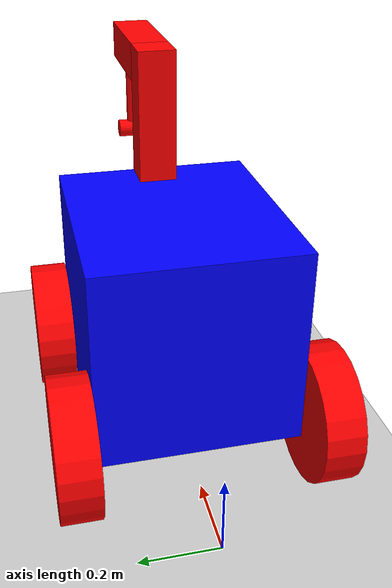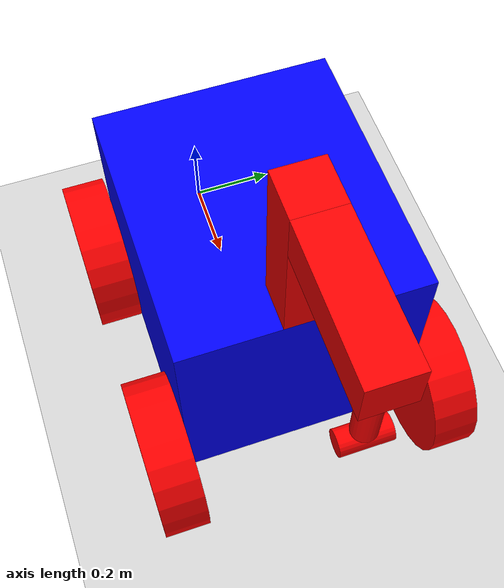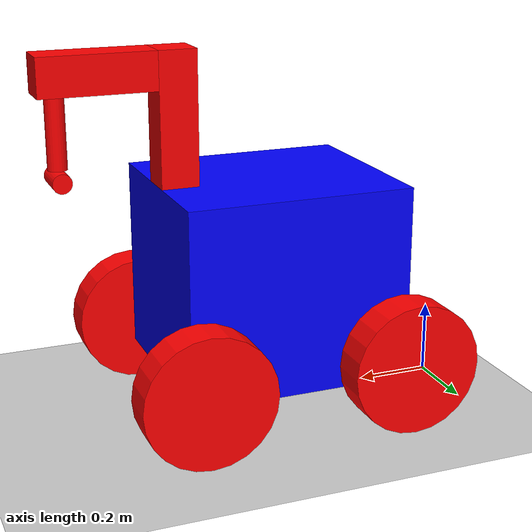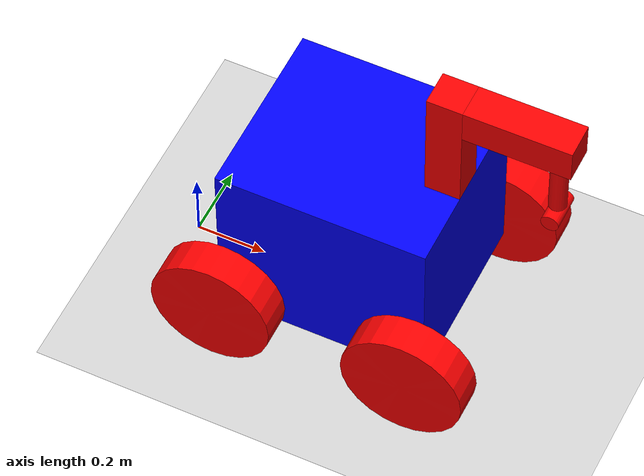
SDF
<?xml version="1.0" ?>
<sdf version="1.10">
    <world name="car_world">
        <physics name="1ms" type="ignored">
            <max_step_size>0.001</max_step_size>
            <real_time_factor>1.0</real_time_factor>
        </physics>
        <plugin
            filename="gz-sim-physics-system"
            name="gz::sim::systems::Physics">
        </plugin>
        <plugin
            filename="gz-sim-user-commands-system"
            name="gz::sim::systems::UserCommands">
        </plugin>
        <plugin
            filename="gz-sim-scene-broadcaster-system"
            name="gz::sim::systems::SceneBroadcaster">
        </plugin>

        <light type="directional" name="sun">
            <cast_shadows>true</cast_shadows>
            <pose>0 0 10 0 0 0</pose>
            <diffuse>0.8 0.8 0.8 1</diffuse>
            <specular>0.2 0.2 0.2 1</specular>
            <attenuation>
                <range>1000</range>
                <constant>0.9</constant>
                <linear>0.01</linear>
                <quadratic>0.001</quadratic>
            </attenuation>
            <direction>-0.5 0.1 -0.9</direction>
        </light>

        <model name="ground_plane">
            <static>true</static>
            <link name="link">
                <collision name="collision">
                <geometry>
                    <plane>
                    <normal>0 0 1</normal>
                    </plane>
                </geometry>
                </collision>
                <visual name="visual">
                <geometry>
                    <plane>
                    <normal>0 0 1</normal>
                    <size>100 100</size>
                    </plane>
                </geometry>
                <material>
                    <ambient>0.8 0.8 0.8 1</ambient>
                    <diffuse>0.8 0.8 0.8 1</diffuse>
                    <specular>0.8 0.8 0.8 1</specular>
                </material>
                </visual>
            </link>
        </model>
        <model name='vehicle_blue' canonical_link='chassis'>
        	<plugin
       			filename="libignition-gazebo-diff-drive-system.so"
       			name="ignition::gazebo::systems::DiffDrive">
       			<left_joint>left_wheel_joint</left_joint>
       			<right_joint>right_wheel_joint</right_joint>
       			<wheel_separation>1.2</wheel_separation>
       			<wheel_radius>0.4</wheel_radius>
       			<odom_publish_frequency>1</odom_publish_frequency>
       			<topic>cmd_vel</topic>
    			</plugin>
                <frame name="lidar_frame" attached_to='chassis'>
                    <pose>0.8 0 0.5 0 0 0</pose>
                </frame>
            <pose relative_to='lidar_frame'>0 0 0 0 0 0</pose>
<sensor name='gpu_lidar' type='gpu_lidar'>"
            <topic>lidar</topic>
            <update_rate>10</update_rate>
            <ray>
                <scan>
                    <horizontal>
                        <samples>360</samples>
                        <resolution>1</resolution>
                        <min_angle>-1.396263</min_angle>
                        <max_angle>1.396263</max_angle>
                    </horizontal>
                    <vertical>
                        <samples>1</samples>
                        <resolution>0.01</resolution>
                        <min_angle>0</min_angle>
                        <max_angle>0</max_angle>
                    </vertical>
                </scan>
                <range>
                    <min>0.08</min>
                    <max>10.0</max>
                    <resolution>0.01</resolution>
                </range>
            </ray>
            <always_on>1</always_on>
            <visualize>true</visualize>
        </sensor>
        <sensor name="camera1" type="camera">
        <update_rate>10</update_rate>
        <pose relative_to='lidar_frame'>0 0 0 0 0 0</pose>
        <topic>/images_l16</topic>
        <camera>
          <horizontal_fov>1.05</horizontal_fov>
          <image>
            <width>256</width>
            <height>256</height>
            <format>L_INT16</format>
          </image>
          <clip>
            <near>0.1</near>
            <far>10.0</far>
          </clip>

        </camera>
      </sensor>
    		<pose relative_to='world'>0 0 0 0 0 0</pose>
    		<link name='chassis'>
        		<pose relative_to='__model__'>0.5 0 0.375 0 0 0</pose>
        	<inertial> <!--inertial properties of the link mass, inertia matix-->
        		<mass>4</mass>
        		<inertia>
            			<ixx>0.12</ixx>
            			<ixy>0</ixy>
            			<ixz>0</ixz>
            			<iyy>0.090133</iyy>
            			<iyz>0</iyz>
            			<izz>0.210133</izz>
        		</inertia>
    		</inertial>
    		<visual name='visual'>
        		<geometry>
            			<box>
                			<size>0.6 0.52 0.52</size>
            			</box>
        		</geometry>
        		<!--let's add color to our link-->
        		<material>
            			<ambient>0.0 0.0 1.0 1</ambient>
            			<diffuse>0.0 0.0 1.0 1</diffuse>
            			<specular>0.0 0.0 1.0 1</specular>
        		</material>
    		</visual>
    		<collision name='collision'>
            <geometry>
                <box>
                    <size>0.6 0.52 0.52</size>
                </box>
            </geometry>
        </collision>
    </link>
    <link name = 'gripper'>
    	<pose relative_to = 'chassis'> 0.25 0 0.26 0 0 0</pose>
    </link>

<link name = 'body_a'>
    <pose relative_to ="gripper">0 0 0.175 -1.5707 0 0</pose>
    <inertial>
    	<mass>2</mass>
    	<inertia>
    		<ixx>0.001667</ixx>
            	<ixy>0</ixy>
            	<ixz>0</ixz>
            	<iyy>0.020417</iyy>
            	<iyz>0</iyz>
            	<izz>0.022083</izz>
    	</inertia>
    </inertial>
    <visual name='visual'>
    <geometry>
        <box>
              <size>0.1 0.35 0.1</size>
        </box>
        </geometry>
        <material>
            <ambient>1.0 0.0 0.0 1</ambient>
            <diffuse>1.0 0.0 0.0 1</diffuse>
            <specular>1.0 0.0 0.0 1</specular>
        </material>
    </visual>
    <collision name='collision'>
        <geometry>
            <box>
              <size>0.1 0.35 0.1</size>
            </box>
        </geometry>
    </collision>
</link>

<link name = 'body_b'>
    <pose relative_to ="gripper">0.20 0 0.3 -1.5707 0 0</pose>
    <inertial>
    	<mass>2</mass>
    	<inertia>
    		<ixx>0.001667</ixx>
            	<ixy>0</ixy>
            	<ixz>0</ixz>
            	<iyy>0.020417</iyy>
            	<iyz>0</iyz>
            	<izz>0.022083</izz>
    	</inertia>
    </inertial>
    <visual name='visual'>
    <geometry>
        <box>
              <size>0.3 0.1 0.1</size>
        </box>
        </geometry>
        <material>
            <ambient>1.0 0.0 0.0 1</ambient>
            <diffuse>1.0 0.0 0.0 1</diffuse>
            <specular>1.0 0.0 0.0 1</specular>
        </material>
    </visual>
    <collision name='collision'>
        <geometry>
            <box>
              <size>0.3 0.1 0.1</size>
            </box>
        </geometry>
    </collision>
</link>

<link name = 'body_c'>
    <pose relative_to ="gripper">0.30 0 0.1575 0 0 0</pose>
    <inertial>
    	<mass>2</mass>
    	<inertia>
    		<ixx>0.001667</ixx>
            	<ixy>0</ixy>
            	<ixz>0</ixz>
            	<iyy>0.020417</iyy>
            	<iyz>0</iyz>
            	<izz>0.022083</izz>
    	</inertia>
    </inertial>
    <visual name='visual'>
    <geometry>
        <cylinder>
              <radius>0.025</radius>
                <length>0.185</length>
        </cylinder>
        </geometry>
        <material>
            <ambient>1.0 0.0 0.0 1</ambient>
            <diffuse>1.0 0.0 0.0 1</diffuse>
            <specular>1.0 0.0 0.0 1</specular>
        </material>
    </visual>
    <collision name='collision'>
        <geometry>
            <cylinder>
                <radius>0.025</radius>
                <length>0.185</length>
        </cylinder>
        </geometry>
    </collision>
</link>

<link name = 'body_d'>
    <pose relative_to ="gripper">0.30 0 0.04 -1.5707 0 0</pose>
    <inertial>
    	<mass>2</mass>
    	<inertia>
    		<ixx>0.001667</ixx>
            	<ixy>0</ixy>
            	<ixz>0</ixz>
            	<iyy>0.020417</iyy>
            	<iyz>0</iyz>
            	<izz>0.022083</izz>
    	</inertia>
    </inertial>
    <visual name='visual'>
    <geometry>
        <cylinder>
              <radius>0.025</radius>
              <length>0.1</length>
        </cylinder>
        </geometry>
        <material>
            <ambient>1.0 0.0 0.0 1</ambient>
            <diffuse>1.0 0.0 0.0 1</diffuse>
            <specular>1.0 0.0 0.0 1</specular>
        </material>
    </visual>
    <collision name='collision'>
        <geometry>
            <cylinder>
                <radius>0.025</radius>
                <length>0.1</length>
        </cylinder>
        </geometry>z
    </collision>
</link>

<link name = 'body_e'>
    <pose relative_to ="gripper">0.30 0 0.1575 0 0 0</pose>
    <inertial>
    	<mass>2</mass>
    	<inertia>
    		<ixx>0.001667</ixx>
            	<ixy>0</ixy>
            	<ixz>0</ixz>
            	<iyy>0.020417</iyy>
            	<iyz>0</iyz>
            	<izz>0.022083</izz>
    	</inertia>
    </inertial>
    <visual name='visual'>
    <geometry>
        <cylinder>
              <radius>0.0125</radius>
              <length>0.1</length>
        </cylinder>
        </geometry>
        <material>
            <ambient>1.0 0.0 0.0 1</ambient>
            <diffuse>1.0 0.0 0.0 1</diffuse>
            <specular>1.0 0.0 0.0 1</specular>
        </material>
    </visual>
    <collision name='collision'>
        <geometry>
            <cylinder>
                <radius>0.025</radius>
                <length>0.1</length>
        </cylinder>
        </geometry>
    </collision>
</link>

<link name='left_wheel_back'>
    <pose relative_to="chassis">-0.28 0.31 -0.20 -1.5707 0 0</pose>
    <inertial>
        <mass>1</mass>
        <inertia>
            <ixx>0.00849</ixx>
            <ixy>0</ixy>
            <ixz>0</ixz>
            <iyy>0.00849</iyy>
            <iyz>0</iyz>
            <izz>0.015312</izz>
        </inertia>
    </inertial>
    <visual name='visual'>
        <geometry>
            <cylinder>
                <radius>0.175</radius>
                <length>0.1</length>
            </cylinder>
        </geometry>
        <material>
            <ambient>1.0 0.0 0.0 1</ambient>
            <diffuse>1.0 0.0 0.0 1</diffuse>
            <specular>1.0 0.0 0.0 1</specular>
        </material>
    </visual>
    <collision name='collision'>
        <geometry>
            <cylinder>
                <radius>0.4</radius>
                <length>0.2</length>
            </cylinder>
        </geometry>
    </collision>
</link>
<link name='left_wheel_front'>
    <pose relative_to="chassis">0.28 0.31 -0.20 -1.5707 0 0</pose>
    <inertial>
        <mass>1</mass>
        <inertia>
            <ixx>0.00849</ixx>
            <ixy>0</ixy>
            <ixz>0</ixz>
            <iyy>0.00849</iyy>
            <iyz>0</iyz>
            <izz>0.015312</izz>
        </inertia>
    </inertial>
    <visual name='visual'>
        <geometry>
            <cylinder>
                <radius>0.175</radius>
                <length>0.1</length>
            </cylinder>
        </geometry>
        <material>
            <ambient>1.0 0.0 0.0 1</ambient>
            <diffuse>1.0 0.0 0.0 1</diffuse>
            <specular>1.0 0.0 0.0 1</specular>
        </material>
    </visual>
    <collision name='collision'>
        <geometry>
            <cylinder>
                <radius>0.4</radius>
                <length>0.2</length>
            </cylinder>
        </geometry>
    </collision>
</link>
<link name='right_wheel_front'>
    <pose relative_to="chassis">0.28 -0.31 -0.20 -1.5707 0 0</pose>
    <inertial>
        <mass>1</mass>
        <inertia>
            <ixx>0.00849</ixx>
            <ixy>0</ixy>
            <ixz>0</ixz>
            <iyy>0.00849</iyy>
            <iyz>0</iyz>
            <izz>0.015312</izz>
        </inertia>
    </inertial>
    <visual name='visual'>
        <geometry>
            <cylinder>
                <radius>0.175</radius>
                <length>0.1</length>
            </cylinder>
        </geometry>
        <material>
            <ambient>1.0 0.0 0.0 1</ambient>
            <diffuse>1.0 0.0 0.0 1</diffuse>
            <specular>1.0 0.0 0.0 1</specular>
        </material>
    </visual>
    <collision name='collision'>
        <geometry>
            <cylinder>
                <radius>0.4</radius>
                <length>0.2</length>
            </cylinder>
        </geometry>
    </collision>
</link>
<link name='right_wheel_back'>
    <pose relative_to="chassis">-0.28 -0.31 -0.20 -1.5707 0 0</pose>
    <inertial>
        <mass>1</mass>
        <inertia>
            <ixx>0.00849</ixx>
            <ixy>0</ixy>
            <ixz>0</ixz>
            <iyy>0.00849</iyy>
            <iyz>0</iyz>
            <izz>0.015312</izz>
        </inertia>
    </inertial>
    <visual name='visual'>
        <geometry>
            <cylinder>
                <radius>0.175</radius>
                <length>0.1</length>
            </cylinder>
        </geometry>
        <material>
            <ambient>1.0 0.0 0.0 1</ambient>
            <diffuse>1.0 0.0 0.0 1</diffuse>
            <specular>1.0 0.0 0.0 1</specular>
        </material>
    </visual>
    <collision name='collision'>
        <geometry>
            <cylinder>
                <radius>0.4</radius>
                <length>0.2</length>
            </cylinder>
        </geometry>
    </collision>
</link>
<joint name='right_wheel_front_joint' type='revolute'>
    <pose relative_to='right_wheel_front'/>
    <parent>chassis</parent>
    <child>right_wheel_front</child>
    <axis>
        <xyz expressed_in='__model__'>0 1 0</xyz>
        <limit>
            <lower>-1.79769e+308</lower>    <!--negative infinity-->
            <upper>1.79769e+308</upper>     <!--positive infinity-->
        </limit>
    </axis>
</joint>
<joint name='right_wheel_back_joint' type='revolute'>
    <pose relative_to='right_wheel_back'/>
    <parent>chassis</parent>
    <child>right_wheel_back</child>
    <axis>
        <xyz expressed_in='__model__'>0 1 0</xyz>
        <limit>
            <lower>-1.79769e+308</lower>    <!--negative infinity-->
            <upper>1.79769e+308</upper>     <!--positive infinity-->
        </limit>
    </axis>
</joint>
<joint name='left_wheel_front_joint' type='revolute'>
    <pose relative_to='left_wheel_front'/>
    <parent>chassis</parent>
    <child>left_wheel_front</child>
    <axis>
        <xyz expressed_in='__model__'>0 1 0</xyz>
        <limit>
            <lower>-1.79769e+308</lower>    <!--negative infinity-->
            <upper>1.79769e+308</upper>     <!--positive infinity-->
        </limit>
    </axis>
</joint>
<joint name='left_wheel_back_joint' type='revolute'>
    <pose relative_to='left_wheel_back'/>
    <parent>chassis</parent>
    <child>left_wheel_back</child>
    <axis>
        <xyz expressed_in='__model__'>0 1 0</xyz>
        <limit>
            <lower>-1.79769e+308</lower>    <!--negative infinity-->
            <upper>1.79769e+308</upper>     <!--positive infinity-->
        </limit>
    </axis>
</joint>

<joint name='base_rotation' type='revolute'>
    <pose relative_to='body_a'/>
    <parent>chassis</parent>
    <child>body_a</child>
    <axis>
        <xyz expressed_in='__model__'>0 0 1</xyz>
        <limit>
            <lower>-1.79769e+308</lower>    <!--negative infinity-->
            <upper>1.79769e+308</upper>     <!--positive infinity-->
        </limit>
    </axis>
</joint>
<joint name='body_b_fixed' type='revolute'>
    <pose relative_to='body_b'/>
    <parent>body_a</parent>
    <child>body_b</child>
    <axis>
        <xyz expressed_in='body_a'>0 0 1</xyz>
        <limit>
            <lower>0</lower>    <!--negative infinity-->
            <upper>0</upper>     <!--positive infinity-->
        </limit>
    </axis>
    <axis>
        <xyz expressed_in='body_a'>0 1 0</xyz>
        <limit>
            <lower>0</lower>    <!--negative infinity-->
            <upper>0</upper>     <!--positive infinity-->
        </limit>
    </axis>
    <axis>
        <xyz expressed_in='body_a'>1 0 0</xyz>
        <limit>
            <lower>0</lower>    <!--negative infinity-->
            <upper>0</upper>     <!--positive infinity-->
        </limit>
    </axis>
</joint>
<joint name='body_c_joint_fixed' type='revolute'>
    <pose relative_to='body_c'/>
    <parent>body_b</parent>
    <child>body_c</child>
    <axis>
        <xyz expressed_in='body_b'>0 0 1</xyz>
        <limit>
            <lower>0</lower>    <!--negative infinity-->
            <upper>0</upper>     <!--positive infinity-->
        </limit>
    </axis>
    <axis>
        <xyz expressed_in='body_b'>0 1 0</xyz>
        <limit>
            <lower>0</lower>    <!--negative infinity-->
            <upper>0</upper>     <!--positive infinity-->
        </limit>
    </axis>
    <axis>
        <xyz expressed_in='body_b'>1 0 0</xyz>
        <limit>
            <lower>0</lower>    <!--negative infinity-->
            <upper>0</upper>     <!--positive infinity-->
        </limit>
    </axis>
</joint>

<joint name='gripper_end' type='revolute'>
    <pose relative_to='body_e'/>
    <parent>body_e</parent>
    <child>body_d</child>
    <axis>
        <xyz expressed_in='body_e'>0 0 1</xyz>
        <limit>
            <lower>-1.79769e+308</lower>    <!--negative infinity-->
            <upper>1.79769e+308</upper>     <!--positive infinity-->
        </limit>
    </axis>
</joint>

<joint name='telescopic_arm' type='prismatic'>
    <pose relative_to='body_e'/>
    <parent>body_c</parent>
    <child>body_e</child>
    <axis>
        <xyz expressed_in='body_c'>0 0 1</xyz>
        <limit>
            <lower>-0.185</lower>    <!--negative infinity-->
            <upper>0</upper>     <!--positive infinity-->
        </limit>
    </axis>
</joint>

</model>
    </world>
</sdf>
